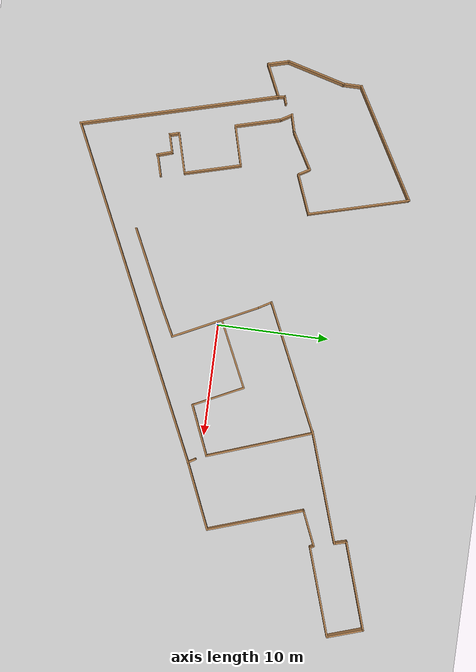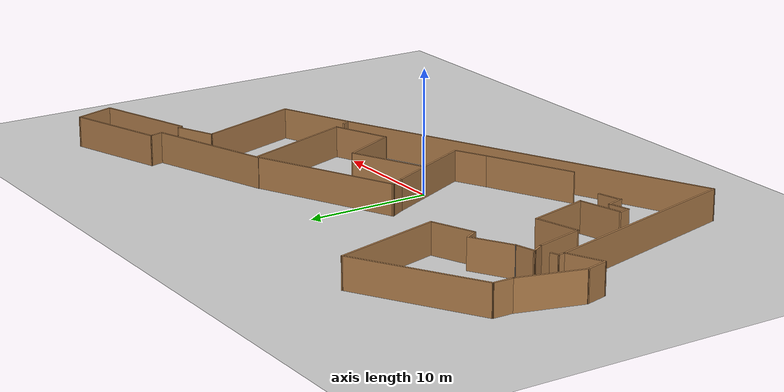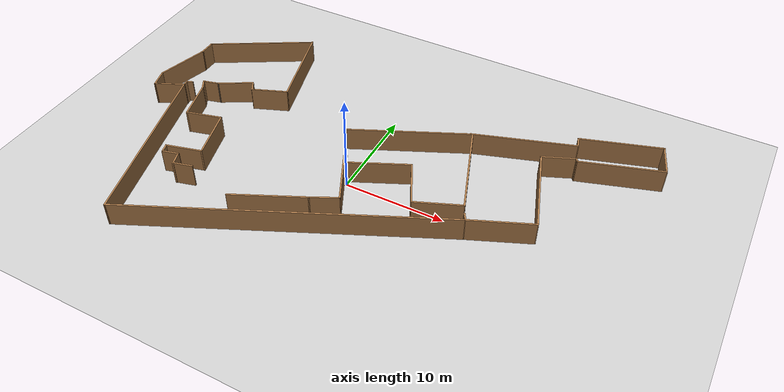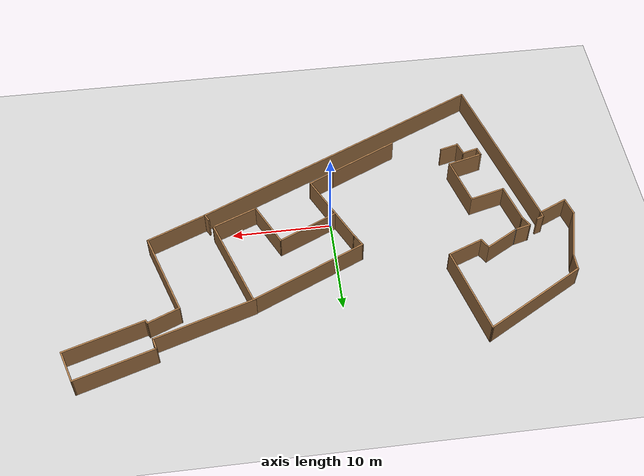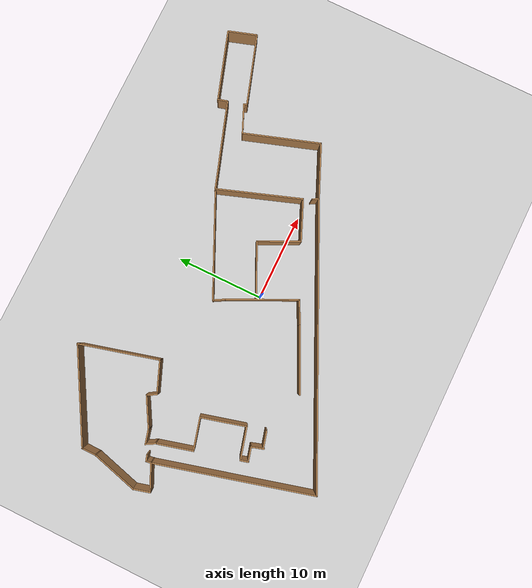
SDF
<sdf version="1.10">
 <world name="maze">
  <model name="ground_plane">
   <static>true</static>
   <link name="link">
    <collision name="collision">
     <geometry><plane><normal>0 0 1</normal><size>100 100</size></plane></geometry>
    </collision>
    <visual name="visual">
     <geometry><plane><normal>0 0 1</normal><size>100 100</size></plane></geometry>
     <material>
      <ambient>0.800000012 0.800000012 0.800000012 1</ambient>
      <diffuse>0.800000012 0.800000012 0.800000012 1</diffuse>
      <specular>0.800000012 0.800000012 0.800000012 1</specular>
     </material>
     <plugin name="__default__" filename="__default__"/>
    </visual>
    <inertial>
     <mass>1</mass>
     <inertia><ixx>1</ixx><ixy>0</ixy><ixz>0</ixz><iyy>1</iyy><iyz>0</iyz><izz>1</izz></inertia>
    </inertial>
   </link>
   <plugin name="__default__" filename="__default__"/>
  </model>
  <model name="FullOfficeMap">
   <pose>1.1203000000000001 -1.71753 0 0 0 0</pose>
   <link name="Wall_11">
    <collision name="Wall_11_Collision">
     <geometry><box><size>3.77678 0.14999999999999999 2.5</size></box></geometry>
     <pose>0 0 1.25 0 0 0</pose>
    </collision>
    <visual name="Wall_11_Visual">
     <pose>0 0 1.25 0 0 0</pose>
     <geometry><box><size>3.77678 0.14999999999999999 2.5</size></box></geometry>
     <material>
      <script><uri>file:///usr/share/gz/gz-sim8/media/gazebo.material</uri><name>Gazebo/Wood</name></script>
      <ambient>1 1 1 1</ambient>
     </material>
     <meta><layer>0</layer></meta>
    </visual>
    <pose>-13.7263 7.8209400000000002 0 0 0 -2.7603800000000001</pose>
    <inertial>
     <mass>1</mass>
     <inertia><ixx>1</ixx><ixy>0</ixy><ixz>0</ixz><iyy>1</iyy><iyz>0</iyz><izz>1</izz></inertia>
    </inertial>
   </link>
   <link name="Wall_12">
    <collision name="Wall_12_Collision">
     <geometry><box><size>1.25 0.14999999999999999 2.5</size></box></geometry>
     <pose>0 0 1.25 0 0 0</pose>
    </collision>
    <visual name="Wall_12_Visual">
     <pose>0 0 1.25 0 0 0</pose>
     <geometry><box><size>1.25 0.14999999999999999 2.5</size></box></geometry>
     <material>
      <script><uri>file:///usr/share/gz/gz-sim8/media/gazebo.material</uri><name>Gazebo/Wood</name></script>
      <ambient>1 1 1 1</ambient>
     </material>
     <meta><layer>0</layer></meta>
    </visual>
    <pose>-15.730999999999968 7.6225900000000015 0 0 0 2.0944000000000007</pose>
    <inertial>
     <mass>1</mass>
     <inertia><ixx>1</ixx><ixy>0</ixy><ixz>0</ixz><iyy>1</iyy><iyz>0</iyz><izz>1</izz></inertia>
    </inertial>
   </link>
   <link name="Wall_23">
    <collision name="Wall_23_Collision">
     <geometry><box><size>3.75 0.14999999999999999 2.5</size></box></geometry>
     <pose>0 0 1.25 0 0 0</pose>
    </collision>
    <visual name="Wall_23_Visual">
     <pose>0 0 1.25 0 0 0</pose>
     <geometry><box><size>3.75 0.14999999999999999 2.5</size></box></geometry>
     <material>
      <script><uri>file:///usr/share/gz/gz-sim8/media/gazebo.material</uri><name>Gazebo/Wood</name></script>
      <ambient>1 1 1 1</ambient>
     </material>
     <meta><layer>0</layer></meta>
    </visual>
    <pose>-17.564899999999966 7.1989100000000006 0 0 0 -2.6179899999999998</pose>
    <inertial>
     <mass>1</mass>
     <inertia><ixx>1</ixx><ixy>0</ixy><ixz>0</ixz><iyy>1</iyy><iyz>0</iyz><izz>1</izz></inertia>
    </inertial>
   </link>
   <link name="Wall_24">
    <collision name="Wall_24_Collision">
     <geometry><box><size>0.14999999999999999 0.14999999999999999 2.5</size></box></geometry>
     <pose>0 0 1.25 0 0 0</pose>
    </collision>
    <visual name="Wall_24_Visual">
     <pose>0 0 1.25 0 0 0</pose>
     <geometry><box><size>0.14999999999999999 0.14999999999999999 2.5</size></box></geometry>
     <material>
      <script><uri>file:///usr/share/gz/gz-sim8/media/gazebo.material</uri><name>Gazebo/Grey</name></script>
      <ambient>1 1 1 1</ambient>
     </material>
     <meta><layer>0</layer></meta>
    </visual>
    <pose>-19.123699999999964 6.2989100000000038 0 0 0 -5.5511151231257815e-17</pose>
    <inertial>
     <mass>1</mass>
     <inertia><ixx>1</ixx><ixy>0</ixy><ixz>0</ixz><iyy>1</iyy><iyz>0</iyz><izz>1</izz></inertia>
    </inertial>
   </link>
   <link name="Wall_26">
    <collision name="Wall_26_Collision">
     <geometry><box><size>1.75 0.14999999999999999 2.5</size></box></geometry>
     <pose>0 0 1.25 0 0 0</pose>
    </collision>
    <visual name="Wall_26_Visual">
     <pose>0 0 1.25 0 0 0</pose>
     <geometry><box><size>1.75 0.14999999999999999 2.5</size></box></geometry>
     <material>
      <script><uri>file:///usr/share/gz/gz-sim8/media/gazebo.material</uri><name>Gazebo/Wood</name></script>
      <ambient>1 1 1 1</ambient>
     </material>
     <meta><layer>0</layer></meta>
    </visual>
    <pose>-19.896499999999961 6.0918500000000035 0 0 0 -2.8797899999999998</pose>
    <inertial>
     <mass>1</mass>
     <inertia><ixx>1</ixx><ixy>0</ixy><ixz>0</ixz><iyy>1</iyy><iyz>0</iyz><izz>1</izz></inertia>
    </inertial>
   </link>
   <link name="Wall_27">
    <collision name="Wall_27_Collision">
     <geometry><box><size>1.25 0.14999999999999999 2.5</size></box></geometry>
     <pose>0 0 1.25 0 0 0</pose>
    </collision>
    <visual name="Wall_27_Visual">
     <pose>0 0 1.25 0 0 0</pose>
     <geometry><box><size>1.25 0.14999999999999999 2.5</size></box></geometry>
     <material>
      <script><uri>file:///usr/share/gz/gz-sim8/media/gazebo.material</uri><name>Gazebo/Wood</name></script>
      <ambient>1 1 1 1</ambient>
     </material>
     <meta><layer>0</layer></meta>
    </visual>
    <pose>-20.394199999999962 5.4084800000000035 0 0 0 -1.0472000000000004</pose>
    <inertial>
     <mass>1</mass>
     <inertia><ixx>1</ixx><ixy>0</ixy><ixz>0</ixz><iyy>1</iyy><iyz>0</iyz><izz>1</izz></inertia>
    </inertial>
   </link>
   <link name="Wall_28">
    <collision name="Wall_28_Collision">
     <geometry><box><size>4.25 0.14999999999999999 2.5</size></box></geometry>
     <pose>0 0 1.25 0 0 0</pose>
    </collision>
    <visual name="Wall_28_Visual">
     <pose>0 0 1.25 0 0 0</pose>
     <geometry><box><size>4.25 0.14999999999999999 2.5</size></box></geometry>
     <material>
      <script><uri>file:///usr/share/gz/gz-sim8/media/gazebo.material</uri><name>Gazebo/Wood</name></script>
      <ambient>1 1 1 1</ambient>
     </material>
     <meta><layer>0</layer></meta>
    </visual>
    <pose>-19.588599999999964 2.9520200000000063 0 0 0 -1.3089999999999995</pose>
    <inertial>
     <mass>1</mass>
     <inertia><ixx>1</ixx><ixy>0</ixy><ixz>0</ixz><iyy>1</iyy><iyz>0</iyz><izz>1</izz></inertia>
    </inertial>
   </link>
   <link name="Wall_29">
    <collision name="Wall_29_Collision">
     <geometry><box><size>3.75 0.14999999999999999 2.5</size></box></geometry>
     <pose>0 0 1.25 0 0 0</pose>
    </collision>
    <visual name="Wall_29_Visual">
     <pose>0 0 1.25 0 0 0</pose>
     <geometry><box><size>3.75 0.14999999999999999 2.5</size></box></geometry>
     <material>
      <script><uri>file:///usr/share/gz/gz-sim8/media/gazebo.material</uri><name>Gazebo/Wood</name></script>
      <ambient>1 1 1 1</ambient>
     </material>
     <meta><layer>0</layer></meta>
    </visual>
    <pose>-17.31939999999997 1.4377500000000065 0 0 0 0.26179899999999995</pose>
    <inertial>
     <mass>1</mass>
     <inertia><ixx>1</ixx><ixy>0</ixy><ixz>0</ixz><iyy>1</iyy><iyz>0</iyz><izz>1</izz></inertia>
    </inertial>
   </link>
   <link name="Wall_3">
    <collision name="Wall_3_Collision">
     <geometry><box><size>9.25 0.14999999999999999 2.5</size></box></geometry>
     <pose>0 0 1.25 0 0 0</pose>
    </collision>
    <visual name="Wall_3_Visual">
     <pose>0 0 1.25 0 0 0</pose>
     <geometry><box><size>9.25 0.14999999999999999 2.5</size></box></geometry>
     <material>
      <script><uri>file:///usr/share/gz/gz-sim8/media/gazebo.material</uri><name>Gazebo/Wood</name></script>
      <ambient>1 1 1 1</ambient>
     </material>
     <meta><layer>0</layer></meta>
    </visual>
    <pose>-13.220699999999972 12.890599999999997 0 0 0 1.8326</pose>
    <inertial>
     <mass>1</mass>
     <inertia><ixx>1</ixx><ixy>0</ixy><ixz>0</ixz><iyy>1</iyy><iyz>0</iyz><izz>1</izz></inertia>
    </inertial>
   </link>
   <link name="Wall_30">
    <collision name="Wall_30_Collision">
     <geometry><box><size>5.25 0.14999999999999999 2.5</size></box></geometry>
     <pose>0 0 1.25 0 0 0</pose>
    </collision>
    <visual name="Wall_30_Visual">
     <pose>0 0 1.25 0 0 0</pose>
     <geometry><box><size>5.25 0.14999999999999999 2.5</size></box></geometry>
     <material>
      <script><uri>file:///usr/share/gz/gz-sim8/media/gazebo.material</uri><name>Gazebo/Wood</name></script>
      <ambient>1 1 1 1</ambient>
     </material>
     <meta><layer>0</layer></meta>
    </visual>
    <pose>-14.92069999999997 -0.55949099999998886 0 0 0 -1.3089999999999995</pose>
    <inertial>
     <mass>1</mass>
     <inertia><ixx>1</ixx><ixy>0</ixy><ixz>0</ixz><iyy>1</iyy><iyz>0</iyz><izz>1</izz></inertia>
    </inertial>
   </link>
   <link name="Wall_31">
    <collision name="Wall_31_Collision">
     <geometry><box><size>3.75 0.14999999999999999 2.5</size></box></geometry>
     <pose>0 0 1.25 0 0 0</pose>
    </collision>
    <visual name="Wall_31_Visual">
     <pose>0 0 1.25 0 0 0</pose>
     <geometry><box><size>3.75 0.14999999999999999 2.5</size></box></geometry>
     <material>
      <script><uri>file:///usr/share/gz/gz-sim8/media/gazebo.material</uri><name>Gazebo/Wood</name></script>
      <ambient>1 1 1 1</ambient>
     </material>
     <meta><layer>0</layer></meta>
    </visual>
    <pose>-15.999399999999969 -3.4884799999999867 0 0 0 -2.8797899999999998</pose>
    <inertial>
     <mass>1</mass>
     <inertia><ixx>1</ixx><ixy>0</ixy><ixz>0</ixz><iyy>1</iyy><iyz>0</iyz><izz>1</izz></inertia>
    </inertial>
   </link>
   <link name="Wall_32">
    <collision name="Wall_32_Collision">
     <geometry><box><size>1 0.14999999999999999 2.5</size></box></geometry>
     <pose>0 0 1.25 0 0 0</pose>
    </collision>
    <visual name="Wall_32_Visual">
     <pose>0 0 1.25 0 0 0</pose>
     <geometry><box><size>1 0.14999999999999999 2.5</size></box></geometry>
     <material>
      <script><uri>file:///usr/share/gz/gz-sim8/media/gazebo.material</uri><name>Gazebo/Wood</name></script>
      <ambient>1 1 1 1</ambient>
     </material>
     <meta><layer>0</layer></meta>
    </visual>
    <pose>-17.628099999999964 -4.3648699999999874 0 0 0 -1.3089999999999995</pose>
    <inertial>
     <mass>1</mass>
     <inertia><ixx>1</ixx><ixy>0</ixy><ixz>0</ixz><iyy>1</iyy><iyz>0</iyz><izz>1</izz></inertia>
    </inertial>
   </link>
   <link name="Wall_33">
    <collision name="Wall_33_Collision">
     <geometry><box><size>1.75 0.14999999999999999 2.5</size></box></geometry>
     <pose>0 0 1.25 0 0 0</pose>
    </collision>
    <visual name="Wall_33_Visual">
     <pose>0 0 1.25 0 0 0</pose>
     <geometry><box><size>1.75 0.14999999999999999 2.5</size></box></geometry>
     <material>
      <script><uri>file:///usr/share/gz/gz-sim8/media/gazebo.material</uri><name>Gazebo/Wood</name></script>
      <ambient>1 1 1 1</ambient>
     </material>
     <meta><layer>0</layer></meta>
    </visual>
    <pose>-16.745299999999968 -4.5683299999999871 0 0 0 0.26179899999999995</pose>
    <inertial>
     <mass>1</mass>
     <inertia><ixx>1</ixx><ixy>0</ixy><ixz>0</ixz><iyy>1</iyy><iyz>0</iyz><izz>1</izz></inertia>
    </inertial>
   </link>
   <link name="Wall_34">
    <collision name="Wall_34_Collision">
     <geometry><box><size>1.51474 0.14999999999999999 2.5</size></box></geometry>
     <pose>0 0 1.25 0 0 0</pose>
    </collision>
    <visual name="Wall_34_Visual">
     <pose>0 0 1.25 0 0 0</pose>
     <geometry><box><size>1.51474 0.14999999999999999 2.5</size></box></geometry>
     <material>
      <script><uri>file:///usr/share/gz/gz-sim8/media/gazebo.material</uri><name>Gazebo/Wood</name></script>
      <ambient>1 1 1 1</ambient>
     </material>
     <meta><layer>0</layer></meta>
    </visual>
    <pose>-15.771299999999973 -5.0132799999999857 0 0 0 -1.271329999999999</pose>
    <inertial>
     <mass>1</mass>
     <inertia><ixx>1</ixx><ixy>0</ixy><ixz>0</ixz><iyy>1</iyy><iyz>0</iyz><izz>1</izz></inertia>
    </inertial>
   </link>
   <link name="Wall_38">
    <collision name="Wall_38_Collision">
     <geometry><box><size>2 0.14999999999999999 2.5</size></box></geometry>
     <pose>0 0 1.25 0 0 0</pose>
    </collision>
    <visual name="Wall_38_Visual">
     <pose>0 0 1.25 0 0 0</pose>
     <geometry><box><size>2 0.14999999999999999 2.5</size></box></geometry>
     <material>
      <script><uri>file:///usr/share/gz/gz-sim8/media/gazebo.material</uri><name>Gazebo/Wood</name></script>
      <ambient>1 1 1 1</ambient>
     </material>
     <meta><layer>0</layer></meta>
    </visual>
    <pose>-14.676499999999972 -5.3726699999999834 0 0 0 0.26179899999999995</pose>
    <inertial>
     <mass>1</mass>
     <inertia><ixx>1</ixx><ixy>0</ixy><ixz>0</ixz><iyy>1</iyy><iyz>0</iyz><izz>1</izz></inertia>
    </inertial>
   </link>
   <link name="Wall_44">
    <collision name="Wall_44_Collision">
     <geometry><box><size>7.5791500000000003 0.14999999999999999 2.5</size></box></geometry>
     <pose>0 0 1.25 0 0 0</pose>
    </collision>
    <visual name="Wall_44_Visual">
     <pose>0 0 1.25 0 0 0</pose>
     <geometry><box><size>7.5791500000000003 0.14999999999999999 2.5</size></box></geometry>
     <material>
      <script><uri>file:///usr/share/gz/gz-sim8/media/gazebo.material</uri><name>Gazebo/Wood</name></script>
      <ambient>1 1 1 1</ambient>
     </material>
     <meta><layer>0</layer></meta>
    </visual>
    <pose>-5.3889199999999793 -5.0718599999999849 0 0 0 0.44372099999999998</pose>
    <inertial>
     <mass>1</mass>
     <inertia><ixx>1</ixx><ixy>0</ixy><ixz>0</ixz><iyy>1</iyy><iyz>0</iyz><izz>1</izz></inertia>
    </inertial>
   </link>
   <link name="Wall_45">
    <collision name="Wall_45_Collision">
     <geometry><box><size>2.9271500000000001 0.14999999999999999 2.5</size></box></geometry>
     <pose>0 0 1.25 0 0 0</pose>
    </collision>
    <visual name="Wall_45_Visual">
     <pose>0 0 1.25 0 0 0</pose>
     <geometry><box><size>2.9271500000000001 0.14999999999999999 2.5</size></box></geometry>
     <material>
      <script><uri>file:///usr/share/gz/gz-sim8/media/gazebo.material</uri><name>Gazebo/Wood</name></script>
      <ambient>1 1 1 1</ambient>
     </material>
     <meta><layer>0</layer></meta>
    </visual>
    <pose>-0.79515799999998116 -2.850079999999986 0 0 0 0.46857399999999982</pose>
    <inertial>
     <mass>1</mass>
     <inertia><ixx>1</ixx><ixy>0</ixy><ixz>0</ixz><iyy>1</iyy><iyz>0</iyz><izz>1</izz></inertia>
    </inertial>
   </link>
   <link name="Wall_46">
    <collision name="Wall_46_Collision">
     <geometry><box><size>8.2358399999999996 0.14999999999999999 2.5</size></box></geometry>
     <pose>0 0 1.25 0 0 0</pose>
    </collision>
    <visual name="Wall_46_Visual">
     <pose>0 0 1.25 0 0 0</pose>
     <geometry><box><size>8.2358399999999996 0.14999999999999999 2.5</size></box></geometry>
     <material>
      <script><uri>file:///usr/share/gz/gz-sim8/media/gazebo.material</uri><name>Gazebo/Wood</name></script>
      <ambient>1 1 1 1</ambient>
     </material>
     <meta><layer>0</layer></meta>
    </visual>
    <pose>-1.3151899999999817 1.4172500000000117 0 0 0 2.0209099999999993</pose>
    <inertial>
     <mass>1</mass>
     <inertia><ixx>1</ixx><ixy>0</ixy><ixz>0</ixz><iyy>1</iyy><iyz>0</iyz><izz>1</izz></inertia>
    </inertial>
   </link>
   <link name="Wall_47">
    <collision name="Wall_47_Collision">
     <geometry><box><size>1.5 0.14999999999999999 2.5</size></box></geometry>
     <pose>0 0 1.25 0 0 0</pose>
    </collision>
    <visual name="Wall_47_Visual">
     <pose>0 0 1.25 0 0 0</pose>
     <geometry><box><size>1.5 0.14999999999999999 2.5</size></box></geometry>
     <material>
      <script><uri>file:///usr/share/gz/gz-sim8/media/gazebo.material</uri><name>Gazebo/Wood</name></script>
      <ambient>1 1 1 1</ambient>
     </material>
     <meta><layer>0</layer></meta>
    </visual>
    <pose>-3.4116299999999811 5.6420600000000052 0 0 0 2.0944000000000007</pose>
    <inertial>
     <mass>1</mass>
     <inertia><ixx>1</ixx><ixy>0</ixy><ixz>0</ixz><iyy>1</iyy><iyz>0</iyz><izz>1</izz></inertia>
    </inertial>
   </link>
   <link name="Wall_48">
    <collision name="Wall_48_Collision">
     <geometry><box><size>12.4849 0.14999999999999999 2.5</size></box></geometry>
     <pose>0 0 1.25 0 0 0</pose>
    </collision>
    <visual name="Wall_48_Visual">
     <pose>0 0 1.25 0 0 0</pose>
     <geometry><box><size>12.4849 0.14999999999999999 2.5</size></box></geometry>
     <material>
      <script><uri>file:///usr/share/gz/gz-sim8/media/gazebo.material</uri><name>Gazebo/Wood</name></script>
      <ambient>1 1 1 1</ambient>
     </material>
     <meta><layer>0</layer></meta>
    </visual>
    <pose>1.8449600000000146 8.8234799999999964 0 0 0 0.43461199999999967</pose>
    <inertial>
     <mass>1</mass>
     <inertia><ixx>1</ixx><ixy>0</ixy><ixz>0</ixz><iyy>1</iyy><iyz>0</iyz><izz>1</izz></inertia>
    </inertial>
   </link>
   <link name="Wall_49">
    <collision name="Wall_49_Collision">
     <geometry><box><size>9.9185499999999998 0.14999999999999999 2.5</size></box></geometry>
     <pose>0 0 1.25 0 0 0</pose>
    </collision>
    <visual name="Wall_49_Visual">
     <pose>0 0 1.25 0 0 0</pose>
     <geometry><box><size>9.9185499999999998 0.14999999999999999 2.5</size></box></geometry>
     <material>
      <script><uri>file:///usr/share/gz/gz-sim8/media/gazebo.material</uri><name>Gazebo/Wood</name></script>
      <ambient>1 1 1 1</ambient>
     </material>
     <meta><layer>0</layer></meta>
    </visual>
    <pose>9.0572700000000061 6.8119199999999998 0 0 0 -1.2330999999999994</pose>
    <inertial>
     <mass>1</mass>
     <inertia><ixx>1</ixx><ixy>0</ixy><ixz>0</ixz><iyy>1</iyy><iyz>0</iyz><izz>1</izz></inertia>
    </inertial>
   </link>
   <link name="Wall_5">
    <collision name="Wall_5_Collision">
     <geometry><box><size>11.25 0.14999999999999999 2.5</size></box></geometry>
     <pose>0 0 1.25 0 0 0</pose>
    </collision>
    <visual name="Wall_5_Visual">
     <pose>0 0 1.25 0 0 0</pose>
     <geometry><box><size>11.25 0.14999999999999999 2.5</size></box></geometry>
     <material>
      <script><uri>file:///usr/share/gz/gz-sim8/media/gazebo.material</uri><name>Gazebo/Wood</name></script>
      <ambient>1 1 1 1</ambient>
     </material>
     <meta><layer>0</layer></meta>
    </visual>
    <pose>-19.204799999999963 14.510499999999992 0 0 0 -2.6179899999999998</pose>
    <inertial>
     <mass>1</mass>
     <inertia><ixx>1</ixx><ixy>0</ixy><ixz>0</ixz><iyy>1</iyy><iyz>0</iyz><izz>1</izz></inertia>
    </inertial>
   </link>
   <link name="Wall_50">
    <collision name="Wall_50_Collision">
     <geometry><box><size>4.8802000000000003 0.14999999999999999 2.5</size></box></geometry>
     <pose>0 0 1.25 0 0 0</pose>
    </collision>
    <visual name="Wall_50_Visual">
     <pose>0 0 1.25 0 0 0</pose>
     <geometry><box><size>4.8802000000000003 0.14999999999999999 2.5</size></box></geometry>
     <material>
      <script><uri>file:///usr/share/gz/gz-sim8/media/gazebo.material</uri><name>Gazebo/Wood</name></script>
      <ambient>1 1 1 1</ambient>
     </material>
     <meta><layer>0</layer></meta>
    </visual>
    <pose>8.4944100000000056 1.2888600000000121 0 0 0 -2.74451</pose>
    <inertial>
     <mass>1</mass>
     <inertia><ixx>1</ixx><ixy>0</ixy><ixz>0</ixz><iyy>1</iyy><iyz>0</iyz><izz>1</izz></inertia>
    </inertial>
   </link>
   <link name="Wall_51">
    <collision name="Wall_51_Collision">
     <geometry><box><size>4.9959899999999999 0.14999999999999999 2.5</size></box></geometry>
     <pose>0 0 1.25 0 0 0</pose>
    </collision>
    <visual name="Wall_51_Visual">
     <pose>0 0 1.25 0 0 0</pose>
     <geometry><box><size>4.9959899999999999 0.14999999999999999 2.5</size></box></geometry>
     <material>
      <script><uri>file:///usr/share/gz/gz-sim8/media/gazebo.material</uri><name>Gazebo/Wood</name></script>
      <ambient>1 1 1 1</ambient>
     </material>
     <meta><layer>0</layer></meta>
    </visual>
    <pose>5.2579700000000109 2.5552900000000118 0 0 0 2.0214599999999998</pose>
    <inertial>
     <mass>1</mass>
     <inertia><ixx>1</ixx><ixy>0</ixy><ixz>0</ixz><iyy>1</iyy><iyz>0</iyz><izz>1</izz></inertia>
    </inertial>
   </link>
   <link name="Wall_52">
    <collision name="Wall_52_Collision">
     <geometry><box><size>6.4449399999999999 0.14999999999999999 2.5</size></box></geometry>
     <pose>0 0 1.25 0 0 0</pose>
    </collision>
    <visual name="Wall_52_Visual">
     <pose>0 0 1.25 0 0 0</pose>
     <geometry><box><size>6.4449399999999999 0.14999999999999999 2.5</size></box></geometry>
     <material>
      <script><uri>file:///usr/share/gz/gz-sim8/media/gazebo.material</uri><name>Gazebo/Wood</name></script>
      <ambient>1 1 1 1</ambient>
     </material>
     <meta><layer>0</layer></meta>
    </visual>
    <pose>1.3531200000000148 3.3995800000000056 0 0 0 -2.7029399999999999</pose>
    <inertial>
     <mass>1</mass>
     <inertia><ixx>1</ixx><ixy>0</ixy><ixz>0</ixz><iyy>1</iyy><iyz>0</iyz><izz>1</izz></inertia>
    </inertial>
   </link>
   <link name="Wall_54">
    <pose>-19.823799999999974 -4.2155299999999887 0 0 0 -1.3089999999999995</pose>
    <visual name="Wall_54_Visual">
     <pose>0 0 1.25 0 0 0</pose>
     <geometry><box><size>18 0.14999999999999999 2.5</size></box></geometry>
     <material>
      <script><uri>file:///usr/share/gz/gz-sim8/media/gazebo.material</uri><name>Gazebo/Wood</name></script>
      <ambient>1 1 1 1</ambient>
     </material>
    </visual>
    <collision name="Wall_54_Collision">
     <pose>0 0 1.25 0 0 0</pose>
     <geometry><box><size>18 0.14999999999999999 2.5</size></box></geometry>
    </collision>
    <inertial>
     <mass>1</mass>
     <inertia><ixx>1</ixx><ixy>0</ixy><ixz>0</ixz><iyy>1</iyy><iyz>0</iyz><izz>1</izz></inertia>
    </inertial>
   </link>
   <link name="Wall_57">
    <collision name="Wall_57_Collision">
     <geometry><box><size>32.113 0.14999999999999999 2.5</size></box></geometry>
     <pose>0 0 1.25 0 0 0</pose>
    </collision>
    <visual name="Wall_57_Visual">
     <pose>0 0 1.25 0 0 0</pose>
     <geometry><box><size>32.113 0.14999999999999999 2.5</size></box></geometry>
     <material>
      <script><uri>file:///usr/share/gz/gz-sim8/media/gazebo.material</uri><name>Gazebo/Wood</name></script>
      <ambient>1 1 1 1</ambient>
     </material>
     <meta><layer>0</layer></meta>
    </visual>
    <pose>-3.0222599999999797 -6.0983599999999836 0 0 0 0.43522699999999981</pose>
    <inertial>
     <mass>1</mass>
     <inertia><ixx>1</ixx><ixy>0</ixy><ixz>0</ixz><iyy>1</iyy><iyz>0</iyz><izz>1</izz></inertia>
    </inertial>
   </link>
   <link name="Wall_58">
    <collision name="Wall_58_Collision">
     <geometry><box><size>6.4132100000000003 0.14999999999999999 2.5</size></box></geometry>
     <pose>0 0 1.25 0 0 0</pose>
    </collision>
    <visual name="Wall_58_Visual">
     <pose>0 0 1.25 0 0 0</pose>
     <geometry><box><size>6.4132100000000003 0.14999999999999999 2.5</size></box></geometry>
     <material>
      <script><uri>file:///usr/share/gz/gz-sim8/media/gazebo.material</uri><name>Gazebo/Wood</name></script>
      <ambient>1 1 1 1</ambient>
     </material>
     <meta><layer>0</layer></meta>
    </visual>
    <pose>14.345800000000004 1.8777800000000102 0 0 0 0.40645099999999995</pose>
    <inertial>
     <mass>1</mass>
     <inertia><ixx>1</ixx><ixy>0</ixy><ixz>0</ixz><iyy>1</iyy><iyz>0</iyz><izz>1</izz></inertia>
    </inertial>
   </link>
   <link name="Wall_6">
    <collision name="Wall_6_Collision">
     <geometry><box><size>1.75 0.14999999999999999 2.5</size></box></geometry>
     <pose>0 0 1.25 0 0 0</pose>
    </collision>
    <visual name="Wall_6_Visual">
     <pose>0 0 1.25 0 0 0</pose>
     <geometry><box><size>1.75 0.14999999999999999 2.5</size></box></geometry>
     <material>
      <script><uri>file:///usr/share/gz/gz-sim8/media/gazebo.material</uri><name>Gazebo/Wood</name></script>
      <ambient>1 1 1 1</ambient>
     </material>
     <meta><layer>0</layer></meta>
    </visual>
    <pose>-24.01119999999996 10.935499999999998 0 0 0 -1.5708000000000004</pose>
    <inertial>
     <mass>1</mass>
     <inertia><ixx>1</ixx><ixy>0</ixy><ixz>0</ixz><iyy>1</iyy><iyz>0</iyz><izz>1</izz></inertia>
    </inertial>
   </link>
   <link name="Wall_60">
    <collision name="Wall_60_Collision">
     <geometry><box><size>8.9857899999999997 0.14999999999999999 2.5</size></box></geometry>
     <pose>0 0 1.25 0 0 0</pose>
    </collision>
    <visual name="Wall_60_Visual">
     <pose>0 0 1.25 0 0 0</pose>
     <geometry><box><size>8.9857899999999997 0.14999999999999999 2.5</size></box></geometry>
     <material>
      <script><uri>file:///usr/share/gz/gz-sim8/media/gazebo.material</uri><name>Gazebo/Wood</name></script>
      <ambient>1 1 1 1</ambient>
     </material>
     <meta><layer>0</layer></meta>
    </visual>
    <pose>15.829500000000003 7.3084499999999997 0 0 0 1.8915399999999991</pose>
    <inertial>
     <mass>1</mass>
     <inertia><ixx>1</ixx><ixy>0</ixy><ixz>0</ixz><iyy>1</iyy><iyz>0</iyz><izz>1</izz></inertia>
    </inertial>
   </link>
   <link name="Wall_61">
    <collision name="Wall_61_Collision">
     <geometry><box><size>3.4491999999999998 0.14999999999999999 2.5</size></box></geometry>
     <pose>0 0 1.25 0 0 0</pose>
    </collision>
    <visual name="Wall_61_Visual">
     <pose>0 0 1.25 0 0 0</pose>
     <geometry><box><size>3.4491999999999998 0.14999999999999999 2.5</size></box></geometry>
     <material>
      <script><uri>file:///usr/share/gz/gz-sim8/media/gazebo.material</uri><name>Gazebo/Wood</name></script>
      <ambient>1 1 1 1</ambient>
     </material>
     <meta><layer>0</layer></meta>
    </visual>
    <pose>15.951599999999999 12.153699999999994 0 0 0 0.40678100000000006</pose>
    <inertial>
     <mass>1</mass>
     <inertia><ixx>1</ixx><ixy>0</ixy><ixz>0</ixz><iyy>1</iyy><iyz>0</iyz><izz>1</izz></inertia>
    </inertial>
   </link>
   <link name="Wall_62">
    <collision name="Wall_62_Collision">
     <geometry><box><size>0.5 0.14999999999999999 2.5</size></box></geometry>
     <pose>0 0 1.25 0 0 0</pose>
    </collision>
    <visual name="Wall_62_Visual">
     <pose>0 0 1.25 0 0 0</pose>
     <geometry><box><size>0.5 0.14999999999999999 2.5</size></box></geometry>
     <material>
      <script><uri>file:///usr/share/gz/gz-sim8/media/gazebo.material</uri><name>Gazebo/Wood</name></script>
      <ambient>1 1 1 1</ambient>
     </material>
     <meta><layer>0</layer></meta>
    </visual>
    <pose>17.554099999999995 12.654799999999998 0 0 0 -1.0472000000000004</pose>
    <inertial>
     <mass>1</mass>
     <inertia><ixx>1</ixx><ixy>0</ixy><ixz>0</ixz><iyy>1</iyy><iyz>0</iyz><izz>1</izz></inertia>
    </inertial>
   </link>
   <link name="Wall_63">
    <collision name="Wall_63_Collision">
     <geometry><box><size>8.3035800000000002 0.14999999999999999 2.5</size></box></geometry>
     <pose>0 0 1.25 0 0 0</pose>
    </collision>
    <visual name="Wall_63_Visual">
     <pose>0 0 1.25 0 0 0</pose>
     <geometry><box><size>8.3035800000000002 0.14999999999999999 2.5</size></box></geometry>
     <material>
      <script><uri>file:///usr/share/gz/gz-sim8/media/gazebo.material</uri><name>Gazebo/Wood</name></script>
      <ambient>1 1 1 1</ambient>
     </material>
     <meta><layer>0</layer></meta>
    </visual>
    <pose>21.517399999999999 13.767499999999995 0 0 0 0.31530399999999997</pose>
    <inertial>
     <mass>1</mass>
     <inertia><ixx>1</ixx><ixy>0</ixy><ixz>0</ixz><iyy>1</iyy><iyz>0</iyz><izz>1</izz></inertia>
    </inertial>
   </link>
   <link name="Wall_64">
    <collision name="Wall_64_Collision">
     <geometry><box><size>3.4480599999999999 0.14999999999999999 2.5</size></box></geometry>
     <pose>0 0 1.25 0 0 0</pose>
    </collision>
    <visual name="Wall_64_Visual">
     <pose>0 0 1.25 0 0 0</pose>
     <geometry><box><size>3.4480599999999999 0.14999999999999999 2.5</size></box></geometry>
     <material>
      <script><uri>file:///usr/share/gz/gz-sim8/media/gazebo.material</uri><name>Gazebo/Wood</name></script>
      <ambient>1 1 1 1</ambient>
     </material>
     <meta><layer>0</layer></meta>
    </visual>
    <pose>24.885599999999993 16.600699999999986 0 0 0 1.8836999999999986</pose>
    <inertial>
     <mass>1</mass>
     <inertia><ixx>1</ixx><ixy>0</ixy><ixz>0</ixz><iyy>1</iyy><iyz>0</iyz><izz>1</izz></inertia>
    </inertial>
   </link>
   <link name="Wall_65">
    <collision name="Wall_65_Collision">
     <geometry><box><size>8.2053399999999996 0.14999999999999999 2.5</size></box></geometry>
     <pose>0 0 1.25 0 0 0</pose>
    </collision>
    <visual name="Wall_65_Visual">
     <pose>0 0 1.25 0 0 0</pose>
     <geometry><box><size>8.2053399999999996 0.14999999999999999 2.5</size></box></geometry>
     <material>
      <script><uri>file:///usr/share/gz/gz-sim8/media/gazebo.material</uri><name>Gazebo/Wood</name></script>
      <ambient>1 1 1 1</ambient>
     </material>
     <meta><layer>0</layer></meta>
    </visual>
    <pose>20.547899999999995 16.923699999999986 0 0 0 -2.8270900000000001</pose>
    <inertial>
     <mass>1</mass>
     <inertia><ixx>1</ixx><ixy>0</ixy><ixz>0</ixz><iyy>1</iyy><iyz>0</iyz><izz>1</izz></inertia>
    </inertial>
   </link>
   <link name="Wall_66">
    <collision name="Wall_66_Collision">
     <geometry><box><size>1.25 0.14999999999999999 2.5</size></box></geometry>
     <pose>0 0 1.25 0 0 0</pose>
    </collision>
    <visual name="Wall_66_Visual">
     <pose>0 0 1.25 0 0 0</pose>
     <geometry><box><size>1.25 0.14999999999999999 2.5</size></box></geometry>
     <material>
      <script><uri>file:///usr/share/gz/gz-sim8/media/gazebo.material</uri><name>Gazebo/Wood</name></script>
      <ambient>1 1 1 1</ambient>
     </material>
     <meta><layer>0</layer></meta>
    </visual>
    <pose>16.860099999999999 15.146499999999993 0 0 0 -1.3089999999999995</pose>
    <inertial>
     <mass>1</mass>
     <inertia><ixx>1</ixx><ixy>0</ixy><ixz>0</ixz><iyy>1</iyy><iyz>0</iyz><izz>1</izz></inertia>
    </inertial>
   </link>
   <link name="Wall_67">
    <collision name="Wall_67_Collision">
     <geometry><box><size>10.409800000000001 0.14999999999999999 2.5</size></box></geometry>
     <pose>0 0 1.25 0 0 0</pose>
    </collision>
    <visual name="Wall_67_Visual">
     <pose>0 0 1.25 0 0 0</pose>
     <geometry><box><size>10.409800000000001 0.14999999999999999 2.5</size></box></geometry>
     <material>
      <script><uri>file:///usr/share/gz/gz-sim8/media/gazebo.material</uri><name>Gazebo/Wood</name></script>
      <ambient>1 1 1 1</ambient>
     </material>
     <meta><layer>0</layer></meta>
    </visual>
    <pose>12.134700000000006 12.996299999999994 0 0 0 -2.8205</pose>
    <inertial>
     <mass>1</mass>
     <inertia><ixx>1</ixx><ixy>0</ixy><ixz>0</ixz><iyy>1</iyy><iyz>0</iyz><izz>1</izz></inertia>
    </inertial>
   </link>
   <link name="Wall_7">
    <collision name="Wall_7_Collision">
     <geometry><box><size>5.5 0.14999999999999999 2.5</size></box></geometry>
     <pose>0 0 1.25 0 0 0</pose>
    </collision>
    <visual name="Wall_7_Visual">
     <pose>0 0 1.25 0 0 0</pose>
     <geometry><box><size>5.5 0.14999999999999999 2.5</size></box></geometry>
     <material>
      <script><uri>file:///usr/share/gz/gz-sim8/media/gazebo.material</uri><name>Gazebo/Wood</name></script>
      <ambient>1 1 1 1</ambient>
     </material>
     <meta><layer>0</layer></meta>
    </visual>
    <pose>-24.703599999999959 7.5516800000000002 0 0 0 -1.8326</pose>
    <inertial>
     <mass>1</mass>
     <inertia><ixx>1</ixx><ixy>0</ixy><ixz>0</ixz><iyy>1</iyy><iyz>0</iyz><izz>1</izz></inertia>
    </inertial>
   </link>
   <link name="Wall_74">
    <collision name="Wall_74_Collision">
     <geometry><box><size>0.76837999999999995 0.14999999999999999 2.5</size></box></geometry>
     <pose>0 0 1.25 0 0 0</pose>
    </collision>
    <visual name="Wall_74_Visual">
     <pose>0 0 1.25 0 0 0</pose>
     <geometry><box><size>0.76837999999999995 0.14999999999999999 2.5</size></box></geometry>
     <material>
      <script><uri>file:///usr/share/gz/gz-sim8/media/gazebo.material</uri><name>Gazebo/Wood</name></script>
      <ambient>1 1 1 1</ambient>
     </material>
     <meta><layer>0</layer></meta>
    </visual>
    <pose>-22.17559999999996 4.7117100000000045 0 0 0 1.7062899999999996</pose>
    <inertial>
     <mass>1</mass>
     <inertia><ixx>1</ixx><ixy>0</ixy><ixz>0</ixz><iyy>1</iyy><iyz>0</iyz><izz>1</izz></inertia>
    </inertial>
   </link>
   <link name="Wall_75">
    <collision name="Wall_75_Collision">
     <geometry><box><size>0.76818500000000001 0.14999999999999999 2.5</size></box></geometry>
     <pose>0 0 1.25 0 0 0</pose>
    </collision>
    <visual name="Wall_75_Visual">
     <pose>0 0 1.25 0 0 0</pose>
     <geometry><box><size>0.76818500000000001 0.14999999999999999 2.5</size></box></geometry>
     <material>
      <script><uri>file:///usr/share/gz/gz-sim8/media/gazebo.material</uri><name>Gazebo/Wood</name></script>
      <ambient>1 1 1 1</ambient>
     </material>
     <meta><layer>0</layer></meta>
    </visual>
    <pose>-21.92409999999996 5.1158100000000042 0 0 0 0.32175099999999979</pose>
    <inertial>
     <mass>1</mass>
     <inertia><ixx>1</ixx><ixy>0</ixy><ixz>0</ixz><iyy>1</iyy><iyz>0</iyz><izz>1</izz></inertia>
    </inertial>
   </link>
   <link name="Wall_78">
    <collision name="Wall_78_Collision">
     <geometry><box><size>0.86296799999999996 0.14999999999999999 2.5</size></box></geometry>
     <pose>0 0 1.25 0 0 0</pose>
    </collision>
    <visual name="Wall_78_Visual">
     <pose>0 0 1.25 0 0 0</pose>
     <geometry><box><size>0.86296799999999996 0.14999999999999999 2.5</size></box></geometry>
     <material>
      <script><uri>file:///usr/share/gz/gz-sim8/media/gazebo.material</uri><name>Gazebo/Wood</name></script>
      <ambient>1 1 1 1</ambient>
     </material>
     <meta><layer>0</layer></meta>
    </visual>
    <pose>11.29000000000001 0.947778000000012 0 0 0 2.0979899999999998</pose>
    <inertial>
     <mass>1</mass>
     <inertia><ixx>1</ixx><ixy>0</ixy><ixz>0</ixz><iyy>1</iyy><iyz>0</iyz><izz>1</izz></inertia>
    </inertial>
   </link>
   <link name="Wall_8">
    <collision name="Wall_8_Collision">
     <geometry><box><size>2 0.14999999999999999 2.5</size></box></geometry>
     <pose>0 0 1.25 0 0 0</pose>
    </collision>
    <visual name="Wall_8_Visual">
     <pose>0 0 1.25 0 0 0</pose>
     <geometry><box><size>2 0.14999999999999999 2.5</size></box></geometry>
     <material>
      <script><uri>file:///usr/share/gz/gz-sim8/media/gazebo.material</uri><name>Gazebo/Wood</name></script>
      <ambient>1 1 1 1</ambient>
     </material>
     <meta><layer>0</layer></meta>
    </visual>
    <pose>-25.156499999999959 4.0743500000000008 0 0 0 -1.3089999999999995</pose>
    <inertial>
     <mass>1</mass>
     <inertia><ixx>1</ixx><ixy>0</ixy><ixz>0</ixz><iyy>1</iyy><iyz>0</iyz><izz>1</izz></inertia>
    </inertial>
   </link>
   <link name="Wall_9">
    <collision name="Wall_9_Collision">
     <geometry><box><size>3.2197499999999999 0.14999999999999999 2.5</size></box></geometry>
     <pose>0 0 1.25 0 0 0</pose>
    </collision>
    <visual name="Wall_9_Visual">
     <pose>0 0 1.25 0 0 0</pose>
     <geometry><box><size>3.2197499999999999 0.14999999999999999 2.5</size></box></geometry>
     <material>
      <script><uri>file:///usr/share/gz/gz-sim8/media/gazebo.material</uri><name>Gazebo/Wood</name></script>
      <ambient>1 1 1 1</ambient>
     </material>
     <meta><layer>0</layer></meta>
    </visual>
    <pose>-23.525399999999962 3.8282900000000044 0 0 0 0.43543699999999952</pose>
    <inertial>
     <mass>1</mass>
     <inertia><ixx>1</ixx><ixy>0</ixy><ixz>0</ixz><iyy>1</iyy><iyz>0</iyz><izz>1</izz></inertia>
    </inertial>
   </link>
   <static>true</static>
  </model>
 </world>
</sdf>
